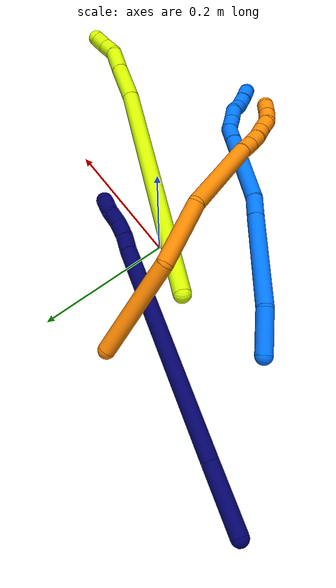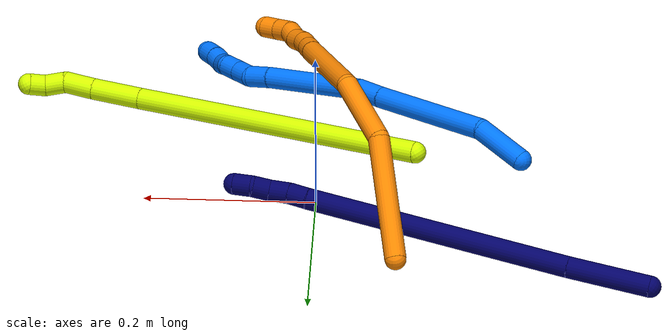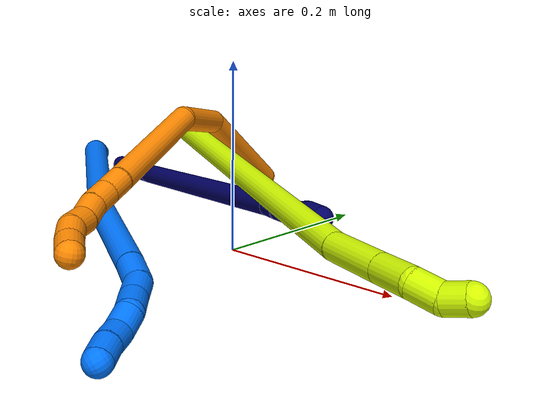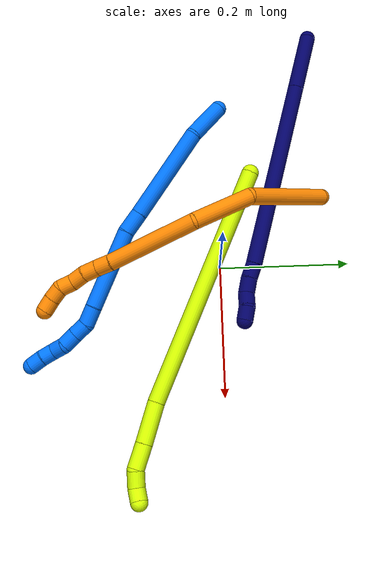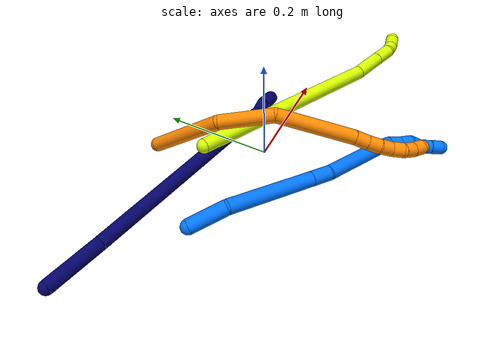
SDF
<sdf version="1.7">
 <world name="default">
  <model name="7">
   <static>0</static>
   <link name="7">
    <collision name="collision-cylinder-e_1_1_4">
     <pose>0.043488 -0.011115 -0.019052 2.61346 1.10139 2.31206</pose>
     <geometry><cylinder><radius>0.0125</radius><length>0.097524</length></cylinder></geometry>
     <surface>
      <friction><ode><mu>1.16</mu><mu2>1.16</mu2><slip1>0</slip1><slip2>0</slip2></ode></friction>
      <contact><ode><kp>1e+06</kp><kd>1</kd><max_vel>0</max_vel><min_depth>0.001</min_depth></ode></contact>
     </surface>
    </collision>
    <visual name="visual-cylinder-e_1_1_4">
     <pose>0.043488 -0.011115 -0.019052 2.61346 1.10139 2.31206</pose>
     <geometry><cylinder><radius>0.0125</radius><length>0.097524</length></cylinder></geometry>
     <material><ambient>0.003922 0 0.403922 1</ambient></material>
    </visual>
    <collision name="collision-cylinder-e_2_4_5">
     <pose>0.228566 -0.055564 -0.09603 2.61941 1.12979 2.34366</pose>
     <geometry><cylinder><radius>0.0125</radius><length>0.313139</length></cylinder></geometry>
     <surface>
      <friction><ode><mu>1.16</mu><mu2>1.16</mu2><slip1>0</slip1><slip2>0</slip2></ode></friction>
      <contact><ode><kp>1e+06</kp><kd>1</kd><max_vel>0</max_vel><min_depth>0.001</min_depth></ode></contact>
     </surface>
    </collision>
    <visual name="visual-cylinder-e_2_4_5">
     <pose>0.228566 -0.055564 -0.09603 2.61941 1.12979 2.34366</pose>
     <geometry><cylinder><radius>0.0125</radius><length>0.313139</length></cylinder></geometry>
     <material><ambient>0.003922 0 0.403922 1</ambient></material>
    </visual>
    <collision name="collision-cylinder-e_3_5_6">
     <pose>0.38043 -0.092451 -0.157817 2.39789 1.0986 2.00709</pose>
     <geometry><cylinder><radius>0.0125</radius><length>0.023074</length></cylinder></geometry>
     <surface>
      <friction><ode><mu>1.16</mu><mu2>1.16</mu2><slip1>0</slip1><slip2>0</slip2></ode></friction>
      <contact><ode><kp>1e+06</kp><kd>1</kd><max_vel>0</max_vel><min_depth>0.001</min_depth></ode></contact>
     </surface>
    </collision>
    <visual name="visual-cylinder-e_3_5_6">
     <pose>0.38043 -0.092451 -0.157817 2.39789 1.0986 2.00709</pose>
     <geometry><cylinder><radius>0.0125</radius><length>0.023074</length></cylinder></geometry>
     <material><ambient>0.003922 0 0.403922 1</ambient></material>
    </visual>
    <collision name="collision-cylinder-e_4_6_7">
     <pose>0.400958 -0.098664 -0.167248 2.69597 1.02896 2.37914</pose>
     <geometry><cylinder><radius>0.0125</radius><length>0.023936</length></cylinder></geometry>
     <surface>
      <friction><ode><mu>1.16</mu><mu2>1.16</mu2><slip1>0</slip1><slip2>0</slip2></ode></friction>
      <contact><ode><kp>1e+06</kp><kd>1</kd><max_vel>0</max_vel><min_depth>0.001</min_depth></ode></contact>
     </surface>
    </collision>
    <visual name="visual-cylinder-e_4_6_7">
     <pose>0.400958 -0.098664 -0.167248 2.69597 1.02896 2.37914</pose>
     <geometry><cylinder><radius>0.0125</radius><length>0.023936</length></cylinder></geometry>
     <material><ambient>0.003922 0 0.403922 1</ambient></material>
    </visual>
    <collision name="collision-cylinder-e_5_7_8">
     <pose>0.420807 -0.100182 -0.176939 -2.87134 1.15146 -2.72864</pose>
     <geometry><cylinder><radius>0.0125</radius><length>0.02101</length></cylinder></geometry>
     <surface>
      <friction><ode><mu>1.16</mu><mu2>1.16</mu2><slip1>0</slip1><slip2>0</slip2></ode></friction>
      <contact><ode><kp>1e+06</kp><kd>1</kd><max_vel>0</max_vel><min_depth>0.001</min_depth></ode></contact>
     </surface>
    </collision>
    <visual name="visual-cylinder-e_5_7_8">
     <pose>0.420807 -0.100182 -0.176939 -2.87134 1.15146 -2.72864</pose>
     <geometry><cylinder><radius>0.0125</radius><length>0.02101</length></cylinder></geometry>
     <material><ambient>0.003922 0 0.403922 1</ambient></material>
    </visual>
    <collision name="collision-cylinder-e_6_8_2">
     <pose>0.439419 -0.101461 -0.186201 2.70146 1.0086 2.37145</pose>
     <geometry><cylinder><radius>0.0125</radius><length>0.021316</length></cylinder></geometry>
     <surface>
      <friction><ode><mu>1.16</mu><mu2>1.16</mu2><slip1>0</slip1><slip2>0</slip2></ode></friction>
      <contact><ode><kp>1e+06</kp><kd>1</kd><max_vel>0</max_vel><min_depth>0.001</min_depth></ode></contact>
     </surface>
    </collision>
    <visual name="visual-cylinder-e_6_8_2">
     <pose>0.439419 -0.101461 -0.186201 2.70146 1.0086 2.37145</pose>
     <geometry><cylinder><radius>0.0125</radius><length>0.021316</length></cylinder></geometry>
     <material><ambient>0.003922 0 0.403922 1</ambient></material>
    </visual>
    <collision name="collision-sphere-2">
     <pose>0.448437 -0.103881 -0.191341 0 -0 0</pose>
     <geometry><sphere><radius>0.0125</radius></sphere></geometry>
     <surface>
      <friction><ode><mu>1.16</mu><mu2>1.16</mu2><slip1>0</slip1><slip2>0</slip2></ode></friction>
      <contact><ode><kp>1e+06</kp><kd>1</kd><max_vel>0</max_vel><min_depth>0.001</min_depth></ode></contact>
     </surface>
    </collision>
    <visual name="visual-sphere-2">
     <pose>0.448437 -0.103881 -0.191341 0 -0 0</pose>
     <geometry><sphere><radius>0.0125</radius></sphere></geometry>
     <material><ambient>0.003922 0 0.403922 1</ambient></material>
    </visual>
    <collision name="collision-sphere-4">
     <pose>0.086976 -0.022231 -0.038105 0 -0 0</pose>
     <geometry><sphere><radius>0.0125</radius></sphere></geometry>
     <surface>
      <friction><ode><mu>1.16</mu><mu2>1.16</mu2><slip1>0</slip1><slip2>0</slip2></ode></friction>
      <contact><ode><kp>1e+06</kp><kd>1</kd><max_vel>0</max_vel><min_depth>0.001</min_depth></ode></contact>
     </surface>
    </collision>
    <visual name="visual-sphere-4">
     <pose>0.086976 -0.022231 -0.038105 0 -0 0</pose>
     <geometry><sphere><radius>0.0125</radius></sphere></geometry>
     <material><ambient>0.003922 0 0.403922 1</ambient></material>
    </visual>
    <collision name="collision-sphere-1">
     <geometry><sphere><radius>0.0125</radius></sphere></geometry>
     <surface>
      <friction><ode><mu>1.16</mu><mu2>1.16</mu2><slip1>0</slip1><slip2>0</slip2></ode></friction>
      <contact><ode><kp>1e+06</kp><kd>1</kd><max_vel>0</max_vel><min_depth>0.001</min_depth></ode></contact>
     </surface>
    </collision>
    <visual name="visual-sphere-1">
     <geometry><sphere><radius>0.0125</radius></sphere></geometry>
     <material><ambient>0.003922 0 0.403922 1</ambient></material>
    </visual>
    <collision name="collision-sphere-8">
     <pose>0.430402 -0.09904 -0.181061 0 -0 0</pose>
     <geometry><sphere><radius>0.0125</radius></sphere></geometry>
     <surface>
      <friction><ode><mu>1.16</mu><mu2>1.16</mu2><slip1>0</slip1><slip2>0</slip2></ode></friction>
      <contact><ode><kp>1e+06</kp><kd>1</kd><max_vel>0</max_vel><min_depth>0.001</min_depth></ode></contact>
     </surface>
    </collision>
    <visual name="visual-sphere-8">
     <pose>0.430402 -0.09904 -0.181061 0 -0 0</pose>
     <geometry><sphere><radius>0.0125</radius></sphere></geometry>
     <material><ambient>0.003922 0 0.403922 1</ambient></material>
    </visual>
    <collision name="collision-sphere-5">
     <pose>0.370155 -0.088898 -0.153955 0 -0 0</pose>
     <geometry><sphere><radius>0.0125</radius></sphere></geometry>
     <surface>
      <friction><ode><mu>1.16</mu><mu2>1.16</mu2><slip1>0</slip1><slip2>0</slip2></ode></friction>
      <contact><ode><kp>1e+06</kp><kd>1</kd><max_vel>0</max_vel><min_depth>0.001</min_depth></ode></contact>
     </surface>
    </collision>
    <visual name="visual-sphere-5">
     <pose>0.370155 -0.088898 -0.153955 0 -0 0</pose>
     <geometry><sphere><radius>0.0125</radius></sphere></geometry>
     <material><ambient>0.003922 0 0.403922 1</ambient></material>
    </visual>
    <collision name="collision-sphere-6">
     <pose>0.390704 -0.096004 -0.161679 0 -0 0</pose>
     <geometry><sphere><radius>0.0125</radius></sphere></geometry>
     <surface>
      <friction><ode><mu>1.16</mu><mu2>1.16</mu2><slip1>0</slip1><slip2>0</slip2></ode></friction>
      <contact><ode><kp>1e+06</kp><kd>1</kd><max_vel>0</max_vel><min_depth>0.001</min_depth></ode></contact>
     </surface>
    </collision>
    <visual name="visual-sphere-6">
     <pose>0.390704 -0.096004 -0.161679 0 -0 0</pose>
     <geometry><sphere><radius>0.0125</radius></sphere></geometry>
     <material><ambient>0.003922 0 0.403922 1</ambient></material>
    </visual>
    <collision name="collision-sphere-7">
     <pose>0.411212 -0.101324 -0.172817 0 -0 0</pose>
     <geometry><sphere><radius>0.0125</radius></sphere></geometry>
     <surface>
      <friction><ode><mu>1.16</mu><mu2>1.16</mu2><slip1>0</slip1><slip2>0</slip2></ode></friction>
      <contact><ode><kp>1e+06</kp><kd>1</kd><max_vel>0</max_vel><min_depth>0.001</min_depth></ode></contact>
     </surface>
    </collision>
    <visual name="visual-sphere-7">
     <pose>0.411212 -0.101324 -0.172817 0 -0 0</pose>
     <geometry><sphere><radius>0.0125</radius></sphere></geometry>
     <material><ambient>0.003922 0 0.403922 1</ambient></material>
    </visual>
    <inertial>
     <pose>0.224795 -0.054492 -0.09452 0 -0 0</pose>
     <mass>0.5</mass>
     <inertia>
      <ixx>5.6e-05</ixx>
      <ixy>0</ixy>
      <ixz>0</ixz>
      <iyy>0.003273</iyy>
      <iyz>0</iyz>
      <izz>-0.001852</izz>
     </inertia>
    </inertial>
   </link>
   <pose>-0.387499 0.162384 0.011743 0.706288 -0.514035 -0.35595</pose>
  </model>
  <model name="14">
   <static>0</static>
   <link name="14">
    <collision name="collision-cylinder-e_1_1_4">
     <pose>0.031217 -0.003379 0.004408 0.654032 1.39472 0.553749</pose>
     <geometry><cylinder><radius>0.0125</radius><length>0.063415</length></cylinder></geometry>
     <surface>
      <friction><ode><mu>1.16</mu><mu2>1.16</mu2><slip1>0</slip1><slip2>0</slip2></ode></friction>
      <contact><ode><kp>1e+06</kp><kd>1</kd><max_vel>0</max_vel><min_depth>0.001</min_depth></ode></contact>
     </surface>
    </collision>
    <visual name="visual-cylinder-e_1_1_4">
     <pose>0.031217 -0.003379 0.004408 0.654032 1.39472 0.553749</pose>
     <geometry><cylinder><radius>0.0125</radius><length>0.063415</length></cylinder></geometry>
     <material><ambient>0 0.462745 1 1</ambient></material>
    </visual>
    <collision name="collision-cylinder-e_2_4_5">
     <pose>0.126637 -0.038437 0.0259 1.07622 1.05985 0.672731</pose>
     <geometry><cylinder><radius>0.0125</radius><length>0.147206</length></cylinder></geometry>
     <surface>
      <friction><ode><mu>1.16</mu><mu2>1.16</mu2><slip1>0</slip1><slip2>0</slip2></ode></friction>
      <contact><ode><kp>1e+06</kp><kd>1</kd><max_vel>0</max_vel><min_depth>0.001</min_depth></ode></contact>
     </surface>
    </collision>
    <visual name="visual-cylinder-e_2_4_5">
     <pose>0.126637 -0.038437 0.0259 1.07622 1.05985 0.672731</pose>
     <geometry><cylinder><radius>0.0125</radius><length>0.147206</length></cylinder></geometry>
     <material><ambient>0 0.462745 1 1</ambient></material>
    </visual>
    <collision name="collision-cylinder-e_3_5_6">
     <pose>0.205727 -0.076806 0.046912 1.03988 1.09036 0.668369</pose>
     <geometry><cylinder><radius>0.0125</radius><length>0.033575</length></cylinder></geometry>
     <surface>
      <friction><ode><mu>1.16</mu><mu2>1.16</mu2><slip1>0</slip1><slip2>0</slip2></ode></friction>
      <contact><ode><kp>1e+06</kp><kd>1</kd><max_vel>0</max_vel><min_depth>0.001</min_depth></ode></contact>
     </surface>
    </collision>
    <visual name="visual-cylinder-e_3_5_6">
     <pose>0.205727 -0.076806 0.046912 1.03988 1.09036 0.668369</pose>
     <geometry><cylinder><radius>0.0125</radius><length>0.033575</length></cylinder></geometry>
     <material><ambient>0 0.462745 1 1</ambient></material>
    </visual>
    <collision name="collision-cylinder-e_4_6_7">
     <pose>0.270927 -0.116838 0.056281 1.40905 0.979503 0.850915</pose>
     <geometry><cylinder><radius>0.0125</radius><length>0.121205</length></cylinder></geometry>
     <surface>
      <friction><ode><mu>1.16</mu><mu2>1.16</mu2><slip1>0</slip1><slip2>0</slip2></ode></friction>
      <contact><ode><kp>1e+06</kp><kd>1</kd><max_vel>0</max_vel><min_depth>0.001</min_depth></ode></contact>
     </surface>
    </collision>
    <visual name="visual-cylinder-e_4_6_7">
     <pose>0.270927 -0.116838 0.056281 1.40905 0.979503 0.850915</pose>
     <geometry><cylinder><radius>0.0125</radius><length>0.121205</length></cylinder></geometry>
     <material><ambient>0 0.462745 1 1</ambient></material>
    </visual>
    <collision name="collision-cylinder-e_5_7_8">
     <pose>0.332332 -0.158724 0.063645 1.34933 0.902343 0.739435</pose>
     <geometry><cylinder><radius>0.0125</radius><length>0.028265</length></cylinder></geometry>
     <surface>
      <friction><ode><mu>1.16</mu><mu2>1.16</mu2><slip1>0</slip1><slip2>0</slip2></ode></friction>
      <contact><ode><kp>1e+06</kp><kd>1</kd><max_vel>0</max_vel><min_depth>0.001</min_depth></ode></contact>
     </surface>
    </collision>
    <visual name="visual-cylinder-e_5_7_8">
     <pose>0.332332 -0.158724 0.063645 1.34933 0.902343 0.739435</pose>
     <geometry><cylinder><radius>0.0125</radius><length>0.028265</length></cylinder></geometry>
     <material><ambient>0 0.462745 1 1</ambient></material>
    </visual>
    <collision name="collision-cylinder-e_6_8_9">
     <pose>0.352501 -0.17149 0.071016 0.659339 0.921516 0.336476</pose>
     <geometry><cylinder><radius>0.0125</radius><length>0.022795</length></cylinder></geometry>
     <surface>
      <friction><ode><mu>1.16</mu><mu2>1.16</mu2><slip1>0</slip1><slip2>0</slip2></ode></friction>
      <contact><ode><kp>1e+06</kp><kd>1</kd><max_vel>0</max_vel><min_depth>0.001</min_depth></ode></contact>
     </surface>
    </collision>
    <visual name="visual-cylinder-e_6_8_9">
     <pose>0.352501 -0.17149 0.071016 0.659339 0.921516 0.336476</pose>
     <geometry><cylinder><radius>0.0125</radius><length>0.022795</length></cylinder></geometry>
     <material><ambient>0 0.462745 1 1</ambient></material>
    </visual>
    <collision name="collision-cylinder-e_7_9_10">
     <pose>0.371136 -0.179666 0.081154 0.700433 1.00004 0.393944</pose>
     <geometry><cylinder><radius>0.0125</radius><length>0.022712</length></cylinder></geometry>
     <surface>
      <friction><ode><mu>1.16</mu><mu2>1.16</mu2><slip1>0</slip1><slip2>0</slip2></ode></friction>
      <contact><ode><kp>1e+06</kp><kd>1</kd><max_vel>0</max_vel><min_depth>0.001</min_depth></ode></contact>
     </surface>
    </collision>
    <visual name="visual-cylinder-e_7_9_10">
     <pose>0.371136 -0.179666 0.081154 0.700433 1.00004 0.393944</pose>
     <geometry><cylinder><radius>0.0125</radius><length>0.022712</length></cylinder></geometry>
     <material><ambient>0 0.462745 1 1</ambient></material>
    </visual>
    <collision name="collision-cylinder-e_8_10_11">
     <pose>0.385892 -0.187759 0.093564 0.492126 0.535776 0.137658</pose>
     <geometry><cylinder><radius>0.0125</radius><length>0.020372</length></cylinder></geometry>
     <surface>
      <friction><ode><mu>1.16</mu><mu2>1.16</mu2><slip1>0</slip1><slip2>0</slip2></ode></friction>
      <contact><ode><kp>1e+06</kp><kd>1</kd><max_vel>0</max_vel><min_depth>0.001</min_depth></ode></contact>
     </surface>
    </collision>
    <visual name="visual-cylinder-e_8_10_11">
     <pose>0.385892 -0.187759 0.093564 0.492126 0.535776 0.137658</pose>
     <geometry><cylinder><radius>0.0125</radius><length>0.020372</length></cylinder></geometry>
     <material><ambient>0 0.462745 1 1</ambient></material>
    </visual>
    <collision name="collision-cylinder-e_9_11_12">
     <pose>0.399037 -0.193606 0.107182 0.281922 0.912767 0.13911</pose>
     <geometry><cylinder><radius>0.0125</radius><length>0.020084</length></cylinder></geometry>
     <surface>
      <friction><ode><mu>1.16</mu><mu2>1.16</mu2><slip1>0</slip1><slip2>0</slip2></ode></friction>
      <contact><ode><kp>1e+06</kp><kd>1</kd><max_vel>0</max_vel><min_depth>0.001</min_depth></ode></contact>
     </surface>
    </collision>
    <visual name="visual-cylinder-e_9_11_12">
     <pose>0.399037 -0.193606 0.107182 0.281922 0.912767 0.13911</pose>
     <geometry><cylinder><radius>0.0125</radius><length>0.020084</length></cylinder></geometry>
     <material><ambient>0 0.462745 1 1</ambient></material>
    </visual>
    <collision name="collision-cylinder-e_10_12_2">
     <pose>0.414782 -0.198419 0.118849 0.493715 0.872225 0.23381</pose>
     <geometry><cylinder><radius>0.0125</radius><length>0.02037</length></cylinder></geometry>
     <surface>
      <friction><ode><mu>1.16</mu><mu2>1.16</mu2><slip1>0</slip1><slip2>0</slip2></ode></friction>
      <contact><ode><kp>1e+06</kp><kd>1</kd><max_vel>0</max_vel><min_depth>0.001</min_depth></ode></contact>
     </surface>
    </collision>
    <visual name="visual-cylinder-e_10_12_2">
     <pose>0.414782 -0.198419 0.118849 0.493715 0.872225 0.23381</pose>
     <geometry><cylinder><radius>0.0125</radius><length>0.02037</length></cylinder></geometry>
     <material><ambient>0 0.462745 1 1</ambient></material>
    </visual>
    <collision name="collision-sphere-2">
     <pose>0.422581 -0.201523 0.124617 0 -0 0</pose>
     <geometry><sphere><radius>0.0125</radius></sphere></geometry>
     <surface>
      <friction><ode><mu>1.16</mu><mu2>1.16</mu2><slip1>0</slip1><slip2>0</slip2></ode></friction>
      <contact><ode><kp>1e+06</kp><kd>1</kd><max_vel>0</max_vel><min_depth>0.001</min_depth></ode></contact>
     </surface>
    </collision>
    <visual name="visual-sphere-2">
     <pose>0.422581 -0.201523 0.124617 0 -0 0</pose>
     <geometry><sphere><radius>0.0125</radius></sphere></geometry>
     <material><ambient>0 0.462745 1 1</ambient></material>
    </visual>
    <collision name="collision-sphere-12">
     <pose>0.406982 -0.195315 0.113081 0 -0 0</pose>
     <geometry><sphere><radius>0.0125</radius></sphere></geometry>
     <surface>
      <friction><ode><mu>1.16</mu><mu2>1.16</mu2><slip1>0</slip1><slip2>0</slip2></ode></friction>
      <contact><ode><kp>1e+06</kp><kd>1</kd><max_vel>0</max_vel><min_depth>0.001</min_depth></ode></contact>
     </surface>
    </collision>
    <visual name="visual-sphere-12">
     <pose>0.406982 -0.195315 0.113081 0 -0 0</pose>
     <geometry><sphere><radius>0.0125</radius></sphere></geometry>
     <material><ambient>0 0.462745 1 1</ambient></material>
    </visual>
    <collision name="collision-sphere-11">
     <pose>0.391092 -0.191898 0.101283 0 -0 0</pose>
     <geometry><sphere><radius>0.0125</radius></sphere></geometry>
     <surface>
      <friction><ode><mu>1.16</mu><mu2>1.16</mu2><slip1>0</slip1><slip2>0</slip2></ode></friction>
      <contact><ode><kp>1e+06</kp><kd>1</kd><max_vel>0</max_vel><min_depth>0.001</min_depth></ode></contact>
     </surface>
    </collision>
    <visual name="visual-sphere-11">
     <pose>0.391092 -0.191898 0.101283 0 -0 0</pose>
     <geometry><sphere><radius>0.0125</radius></sphere></geometry>
     <material><ambient>0 0.462745 1 1</ambient></material>
    </visual>
    <collision name="collision-sphere-10">
     <pose>0.380692 -0.183621 0.085844 0 -0 0</pose>
     <geometry><sphere><radius>0.0125</radius></sphere></geometry>
     <surface>
      <friction><ode><mu>1.16</mu><mu2>1.16</mu2><slip1>0</slip1><slip2>0</slip2></ode></friction>
      <contact><ode><kp>1e+06</kp><kd>1</kd><max_vel>0</max_vel><min_depth>0.001</min_depth></ode></contact>
     </surface>
    </collision>
    <visual name="visual-sphere-10">
     <pose>0.380692 -0.183621 0.085844 0 -0 0</pose>
     <geometry><sphere><radius>0.0125</radius></sphere></geometry>
     <material><ambient>0 0.462745 1 1</ambient></material>
    </visual>
    <collision name="collision-sphere-9">
     <pose>0.36158 -0.175712 0.076463 0 -0 0</pose>
     <geometry><sphere><radius>0.0125</radius></sphere></geometry>
     <surface>
      <friction><ode><mu>1.16</mu><mu2>1.16</mu2><slip1>0</slip1><slip2>0</slip2></ode></friction>
      <contact><ode><kp>1e+06</kp><kd>1</kd><max_vel>0</max_vel><min_depth>0.001</min_depth></ode></contact>
     </surface>
    </collision>
    <visual name="visual-sphere-9">
     <pose>0.36158 -0.175712 0.076463 0 -0 0</pose>
     <geometry><sphere><radius>0.0125</radius></sphere></geometry>
     <material><ambient>0 0.462745 1 1</ambient></material>
    </visual>
    <collision name="collision-sphere-4">
     <pose>0.062434 -0.006758 0.008816 0 -0 0</pose>
     <geometry><sphere><radius>0.0125</radius></sphere></geometry>
     <surface>
      <friction><ode><mu>1.16</mu><mu2>1.16</mu2><slip1>0</slip1><slip2>0</slip2></ode></friction>
      <contact><ode><kp>1e+06</kp><kd>1</kd><max_vel>0</max_vel><min_depth>0.001</min_depth></ode></contact>
     </surface>
    </collision>
    <visual name="visual-sphere-4">
     <pose>0.062434 -0.006758 0.008816 0 -0 0</pose>
     <geometry><sphere><radius>0.0125</radius></sphere></geometry>
     <material><ambient>0 0.462745 1 1</ambient></material>
    </visual>
    <collision name="collision-sphere-1">
     <geometry><sphere><radius>0.0125</radius></sphere></geometry>
     <surface>
      <friction><ode><mu>1.16</mu><mu2>1.16</mu2><slip1>0</slip1><slip2>0</slip2></ode></friction>
      <contact><ode><kp>1e+06</kp><kd>1</kd><max_vel>0</max_vel><min_depth>0.001</min_depth></ode></contact>
     </surface>
    </collision>
    <visual name="visual-sphere-1">
     <geometry><sphere><radius>0.0125</radius></sphere></geometry>
     <material><ambient>0 0.462745 1 1</ambient></material>
    </visual>
    <collision name="collision-sphere-8">
     <pose>0.343423 -0.167269 0.065569 0 -0 0</pose>
     <geometry><sphere><radius>0.0125</radius></sphere></geometry>
     <surface>
      <friction><ode><mu>1.16</mu><mu2>1.16</mu2><slip1>0</slip1><slip2>0</slip2></ode></friction>
      <contact><ode><kp>1e+06</kp><kd>1</kd><max_vel>0</max_vel><min_depth>0.001</min_depth></ode></contact>
     </surface>
    </collision>
    <visual name="visual-sphere-8">
     <pose>0.343423 -0.167269 0.065569 0 -0 0</pose>
     <geometry><sphere><radius>0.0125</radius></sphere></geometry>
     <material><ambient>0 0.462745 1 1</ambient></material>
    </visual>
    <collision name="collision-sphere-5">
     <pose>0.19084 -0.070116 0.042984 0 -0 0</pose>
     <geometry><sphere><radius>0.0125</radius></sphere></geometry>
     <surface>
      <friction><ode><mu>1.16</mu><mu2>1.16</mu2><slip1>0</slip1><slip2>0</slip2></ode></friction>
      <contact><ode><kp>1e+06</kp><kd>1</kd><max_vel>0</max_vel><min_depth>0.001</min_depth></ode></contact>
     </surface>
    </collision>
    <visual name="visual-sphere-5">
     <pose>0.19084 -0.070116 0.042984 0 -0 0</pose>
     <geometry><sphere><radius>0.0125</radius></sphere></geometry>
     <material><ambient>0 0.462745 1 1</ambient></material>
    </visual>
    <collision name="collision-sphere-6">
     <pose>0.220614 -0.083497 0.05084 0 -0 0</pose>
     <geometry><sphere><radius>0.0125</radius></sphere></geometry>
     <surface>
      <friction><ode><mu>1.16</mu><mu2>1.16</mu2><slip1>0</slip1><slip2>0</slip2></ode></friction>
      <contact><ode><kp>1e+06</kp><kd>1</kd><max_vel>0</max_vel><min_depth>0.001</min_depth></ode></contact>
     </surface>
    </collision>
    <visual name="visual-sphere-6">
     <pose>0.220614 -0.083497 0.05084 0 -0 0</pose>
     <geometry><sphere><radius>0.0125</radius></sphere></geometry>
     <material><ambient>0 0.462745 1 1</ambient></material>
    </visual>
    <collision name="collision-sphere-7">
     <pose>0.321241 -0.150179 0.061721 0 -0 0</pose>
     <geometry><sphere><radius>0.0125</radius></sphere></geometry>
     <surface>
      <friction><ode><mu>1.16</mu><mu2>1.16</mu2><slip1>0</slip1><slip2>0</slip2></ode></friction>
      <contact><ode><kp>1e+06</kp><kd>1</kd><max_vel>0</max_vel><min_depth>0.001</min_depth></ode></contact>
     </surface>
    </collision>
    <visual name="visual-sphere-7">
     <pose>0.321241 -0.150179 0.061721 0 -0 0</pose>
     <geometry><sphere><radius>0.0125</radius></sphere></geometry>
     <material><ambient>0 0.462745 1 1</ambient></material>
    </visual>
    <inertial>
     <pose>0.221099 -0.093688 0.048459 0 -0 0</pose>
     <mass>0.5</mass>
     <inertia>
      <ixx>0.000358</ixx>
      <ixy>0</ixy>
      <ixz>0</ixz>
      <iyy>0.000516</iyy>
      <iyz>0</iyz>
      <izz>-0.00018</izz>
     </inertia>
    </inertial>
   </link>
   <pose>-0.237077 0.005526 0.072104 2.04963 -0.386874 -0.621012</pose>
  </model>
  <model name="15">
   <static>0</static>
   <link name="15">
    <collision name="collision-cylinder-e_1_1_4">
     <pose>0.134113 -0.076285 0.091874 0.692961 0.8433 0.321108</pose>
     <geometry><cylinder><radius>0.0125</radius><length>0.359146</length></cylinder></geometry>
     <surface>
      <friction><ode><mu>1.16</mu><mu2>1.16</mu2><slip1>0</slip1><slip2>0</slip2></ode></friction>
      <contact><ode><kp>1e+06</kp><kd>1</kd><max_vel>0</max_vel><min_depth>0.001</min_depth></ode></contact>
     </surface>
    </collision>
    <visual name="visual-cylinder-e_1_1_4">
     <pose>0.134113 -0.076285 0.091874 0.692961 0.8433 0.321108</pose>
     <geometry><cylinder><radius>0.0125</radius><length>0.359146</length></cylinder></geometry>
     <material><ambient>0.835294 1 0 1</ambient></material>
    </visual>
    <collision name="collision-cylinder-e_2_4_5">
     <pose>0.291002 -0.161344 0.200739 0.476627 0.872401 0.225522</pose>
     <geometry><cylinder><radius>0.0125</radius><length>0.059479</length></cylinder></geometry>
     <surface>
      <friction><ode><mu>1.16</mu><mu2>1.16</mu2><slip1>0</slip1><slip2>0</slip2></ode></friction>
      <contact><ode><kp>1e+06</kp><kd>1</kd><max_vel>0</max_vel><min_depth>0.001</min_depth></ode></contact>
     </surface>
    </collision>
    <visual name="visual-cylinder-e_2_4_5">
     <pose>0.291002 -0.161344 0.200739 0.476627 0.872401 0.225522</pose>
     <geometry><cylinder><radius>0.0125</radius><length>0.059479</length></cylinder></geometry>
     <material><ambient>0.835294 1 0 1</ambient></material>
    </visual>
    <collision name="collision-cylinder-e_3_5_6">
     <pose>0.327206 -0.175675 0.22845 0.47832 0.838348 0.216441</pose>
     <geometry><cylinder><radius>0.0125</radius><length>0.036118</length></cylinder></geometry>
     <surface>
      <friction><ode><mu>1.16</mu><mu2>1.16</mu2><slip1>0</slip1><slip2>0</slip2></ode></friction>
      <contact><ode><kp>1e+06</kp><kd>1</kd><max_vel>0</max_vel><min_depth>0.001</min_depth></ode></contact>
     </surface>
    </collision>
    <visual name="visual-cylinder-e_3_5_6">
     <pose>0.327206 -0.175675 0.22845 0.47832 0.838348 0.216441</pose>
     <geometry><cylinder><radius>0.0125</radius><length>0.036118</length></cylinder></geometry>
     <material><ambient>0.835294 1 0 1</ambient></material>
    </visual>
    <collision name="collision-cylinder-e_4_6_7">
     <pose>0.352586 -0.182316 0.243044 0.272543 1.24624 0.196445</pose>
     <geometry><cylinder><radius>0.0125</radius><length>0.025221</length></cylinder></geometry>
     <surface>
      <friction><ode><mu>1.16</mu><mu2>1.16</mu2><slip1>0</slip1><slip2>0</slip2></ode></friction>
      <contact><ode><kp>1e+06</kp><kd>1</kd><max_vel>0</max_vel><min_depth>0.001</min_depth></ode></contact>
     </surface>
    </collision>
    <visual name="visual-cylinder-e_4_6_7">
     <pose>0.352586 -0.182316 0.243044 0.272543 1.24624 0.196445</pose>
     <geometry><cylinder><radius>0.0125</radius><length>0.025221</length></cylinder></geometry>
     <material><ambient>0.835294 1 0 1</ambient></material>
    </visual>
    <collision name="collision-cylinder-e_5_7_2">
     <pose>0.372386 -0.18093 0.252633 -0.407689 0.900067 -0.199067</pose>
     <geometry><cylinder><radius>0.0125</radius><length>0.020036</length></cylinder></geometry>
     <surface>
      <friction><ode><mu>1.16</mu><mu2>1.16</mu2><slip1>0</slip1><slip2>0</slip2></ode></friction>
      <contact><ode><kp>1e+06</kp><kd>1</kd><max_vel>0</max_vel><min_depth>0.001</min_depth></ode></contact>
     </surface>
    </collision>
    <visual name="visual-cylinder-e_5_7_2">
     <pose>0.372386 -0.18093 0.252633 -0.407689 0.900067 -0.199067</pose>
     <geometry><cylinder><radius>0.0125</radius><length>0.020036</length></cylinder></geometry>
     <material><ambient>0.835294 1 0 1</ambient></material>
    </visual>
    <collision name="collision-sphere-2">
     <pose>0.380234 -0.178461 0.25835 0 -0 0</pose>
     <geometry><sphere><radius>0.0125</radius></sphere></geometry>
     <surface>
      <friction><ode><mu>1.16</mu><mu2>1.16</mu2><slip1>0</slip1><slip2>0</slip2></ode></friction>
      <contact><ode><kp>1e+06</kp><kd>1</kd><max_vel>0</max_vel><min_depth>0.001</min_depth></ode></contact>
     </surface>
    </collision>
    <visual name="visual-sphere-2">
     <pose>0.380234 -0.178461 0.25835 0 -0 0</pose>
     <geometry><sphere><radius>0.0125</radius></sphere></geometry>
     <material><ambient>0.835294 1 0 1</ambient></material>
    </visual>
    <collision name="collision-sphere-7">
     <pose>0.364538 -0.183398 0.246917 0 -0 0</pose>
     <geometry><sphere><radius>0.0125</radius></sphere></geometry>
     <surface>
      <friction><ode><mu>1.16</mu><mu2>1.16</mu2><slip1>0</slip1><slip2>0</slip2></ode></friction>
      <contact><ode><kp>1e+06</kp><kd>1</kd><max_vel>0</max_vel><min_depth>0.001</min_depth></ode></contact>
     </surface>
    </collision>
    <visual name="visual-sphere-7">
     <pose>0.364538 -0.183398 0.246917 0 -0 0</pose>
     <geometry><sphere><radius>0.0125</radius></sphere></geometry>
     <material><ambient>0.835294 1 0 1</ambient></material>
    </visual>
    <collision name="collision-sphere-6">
     <pose>0.340634 -0.181234 0.239171 0 -0 0</pose>
     <geometry><sphere><radius>0.0125</radius></sphere></geometry>
     <surface>
      <friction><ode><mu>1.16</mu><mu2>1.16</mu2><slip1>0</slip1><slip2>0</slip2></ode></friction>
      <contact><ode><kp>1e+06</kp><kd>1</kd><max_vel>0</max_vel><min_depth>0.001</min_depth></ode></contact>
     </surface>
    </collision>
    <visual name="visual-sphere-6">
     <pose>0.340634 -0.181234 0.239171 0 -0 0</pose>
     <geometry><sphere><radius>0.0125</radius></sphere></geometry>
     <material><ambient>0.835294 1 0 1</ambient></material>
    </visual>
    <collision name="collision-sphere-5">
     <pose>0.313779 -0.170117 0.21773 0 -0 0</pose>
     <geometry><sphere><radius>0.0125</radius></sphere></geometry>
     <surface>
      <friction><ode><mu>1.16</mu><mu2>1.16</mu2><slip1>0</slip1><slip2>0</slip2></ode></friction>
      <contact><ode><kp>1e+06</kp><kd>1</kd><max_vel>0</max_vel><min_depth>0.001</min_depth></ode></contact>
     </surface>
    </collision>
    <visual name="visual-sphere-5">
     <pose>0.313779 -0.170117 0.21773 0 -0 0</pose>
     <geometry><sphere><radius>0.0125</radius></sphere></geometry>
     <material><ambient>0.835294 1 0 1</ambient></material>
    </visual>
    <collision name="collision-sphere-1">
     <geometry><sphere><radius>0.0125</radius></sphere></geometry>
     <surface>
      <friction><ode><mu>1.16</mu><mu2>1.16</mu2><slip1>0</slip1><slip2>0</slip2></ode></friction>
      <contact><ode><kp>1e+06</kp><kd>1</kd><max_vel>0</max_vel><min_depth>0.001</min_depth></ode></contact>
     </surface>
    </collision>
    <visual name="visual-sphere-1">
     <geometry><sphere><radius>0.0125</radius></sphere></geometry>
     <material><ambient>0.835294 1 0 1</ambient></material>
    </visual>
    <collision name="collision-sphere-4">
     <pose>0.268225 -0.152571 0.183748 0 -0 0</pose>
     <geometry><sphere><radius>0.0125</radius></sphere></geometry>
     <surface>
      <friction><ode><mu>1.16</mu><mu2>1.16</mu2><slip1>0</slip1><slip2>0</slip2></ode></friction>
      <contact><ode><kp>1e+06</kp><kd>1</kd><max_vel>0</max_vel><min_depth>0.001</min_depth></ode></contact>
     </surface>
    </collision>
    <visual name="visual-sphere-4">
     <pose>0.268225 -0.152571 0.183748 0 -0 0</pose>
     <geometry><sphere><radius>0.0125</radius></sphere></geometry>
     <material><ambient>0.835294 1 0 1</ambient></material>
    </visual>
    <inertial>
     <pose>0.187292 -0.103125 0.128757 0 -0 0</pose>
     <mass>0.5</mass>
     <inertia>
      <ixx>0.003309</ixx>
      <ixy>0</ixy>
      <ixz>0</ixz>
      <iyy>0.004242</iyy>
      <iyz>0</iyz>
      <izz>-0.001243</izz>
     </inertia>
    </inertial>
   </link>
   <pose>-0.116324 0.047326 0.108465 0.48157 0.461692 0.239458</pose>
  </model>
  <model name="19">
   <static>0</static>
   <link name="19">
    <collision name="collision-cylinder-e_1_1_4">
     <pose>-0.002832 -0.064662 0.033534 1.09238 -0.038866 -0.023628</pose>
     <geometry><cylinder><radius>0.0125</radius><length>0.145791</length></cylinder></geometry>
     <surface>
      <friction><ode><mu>1.16</mu><mu2>1.16</mu2><slip1>0</slip1><slip2>0</slip2></ode></friction>
      <contact><ode><kp>1e+06</kp><kd>1</kd><max_vel>0</max_vel><min_depth>0.001</min_depth></ode></contact>
     </surface>
    </collision>
    <visual name="visual-cylinder-e_1_1_4">
     <pose>-0.002832 -0.064662 0.033534 1.09238 -0.038866 -0.023628</pose>
     <geometry><cylinder><radius>0.0125</radius><length>0.145791</length></cylinder></geometry>
     <material><ambient>0.996078 0.537255 0 1</ambient></material>
    </visual>
    <collision name="collision-cylinder-e_2_4_5">
     <pose>0.006958 -0.173886 0.070935 1.48421 0.27506 0.252472</pose>
     <geometry><cylinder><radius>0.0125</radius><length>0.092952</length></cylinder></geometry>
     <surface>
      <friction><ode><mu>1.16</mu><mu2>1.16</mu2><slip1>0</slip1><slip2>0</slip2></ode></friction>
      <contact><ode><kp>1e+06</kp><kd>1</kd><max_vel>0</max_vel><min_depth>0.001</min_depth></ode></contact>
     </surface>
    </collision>
    <visual name="visual-cylinder-e_2_4_5">
     <pose>0.006958 -0.173886 0.070935 1.48421 0.27506 0.252472</pose>
     <geometry><cylinder><radius>0.0125</radius><length>0.092952</length></cylinder></geometry>
     <material><ambient>0.996078 0.537255 0 1</ambient></material>
    </visual>
    <collision name="collision-cylinder-e_3_5_6">
     <pose>0.036768 -0.278402 0.049269 1.97342 0.257871 0.387367</pose>
     <geometry><cylinder><radius>0.0125</radius><length>0.134787</length></cylinder></geometry>
     <surface>
      <friction><ode><mu>1.16</mu><mu2>1.16</mu2><slip1>0</slip1><slip2>0</slip2></ode></friction>
      <contact><ode><kp>1e+06</kp><kd>1</kd><max_vel>0</max_vel><min_depth>0.001</min_depth></ode></contact>
     </surface>
    </collision>
    <visual name="visual-cylinder-e_3_5_6">
     <pose>0.036768 -0.278402 0.049269 1.97342 0.257871 0.387367</pose>
     <geometry><cylinder><radius>0.0125</radius><length>0.134787</length></cylinder></geometry>
     <material><ambient>0.996078 0.537255 0 1</ambient></material>
    </visual>
    <collision name="collision-cylinder-e_4_6_7">
     <pose>0.055913 -0.348235 0.018634 2.04749 0.174285 0.28494</pose>
     <geometry><cylinder><radius>0.0125</radius><length>0.022577</length></cylinder></geometry>
     <surface>
      <friction><ode><mu>1.16</mu><mu2>1.16</mu2><slip1>0</slip1><slip2>0</slip2></ode></friction>
      <contact><ode><kp>1e+06</kp><kd>1</kd><max_vel>0</max_vel><min_depth>0.001</min_depth></ode></contact>
     </surface>
    </collision>
    <visual name="visual-cylinder-e_4_6_7">
     <pose>0.055913 -0.348235 0.018634 2.04749 0.174285 0.28494</pose>
     <geometry><cylinder><radius>0.0125</radius><length>0.022577</length></cylinder></geometry>
     <material><ambient>0.996078 0.537255 0 1</ambient></material>
    </visual>
    <collision name="collision-cylinder-e_5_7_8">
     <pose>0.060288 -0.367957 0.009206 1.9849 0.221195 0.336997</pose>
     <geometry><cylinder><radius>0.0125</radius><length>0.022043</length></cylinder></geometry>
     <surface>
      <friction><ode><mu>1.16</mu><mu2>1.16</mu2><slip1>0</slip1><slip2>0</slip2></ode></friction>
      <contact><ode><kp>1e+06</kp><kd>1</kd><max_vel>0</max_vel><min_depth>0.001</min_depth></ode></contact>
     </surface>
    </collision>
    <visual name="visual-cylinder-e_5_7_8">
     <pose>0.060288 -0.367957 0.009206 1.9849 0.221195 0.336997</pose>
     <geometry><cylinder><radius>0.0125</radius><length>0.022043</length></cylinder></geometry>
     <material><ambient>0.996078 0.537255 0 1</ambient></material>
    </visual>
    <collision name="collision-cylinder-e_6_8_9">
     <pose>0.067069 -0.386518 0.000283 2.05602 0.416804 0.674364</pose>
     <geometry><cylinder><radius>0.0125</radius><length>0.021554</length></cylinder></geometry>
     <surface>
      <friction><ode><mu>1.16</mu><mu2>1.16</mu2><slip1>0</slip1><slip2>0</slip2></ode></friction>
      <contact><ode><kp>1e+06</kp><kd>1</kd><max_vel>0</max_vel><min_depth>0.001</min_depth></ode></contact>
     </surface>
    </collision>
    <visual name="visual-cylinder-e_6_8_9">
     <pose>0.067069 -0.386518 0.000283 2.05602 0.416804 0.674364</pose>
     <geometry><cylinder><radius>0.0125</radius><length>0.021554</length></cylinder></geometry>
     <material><ambient>0.996078 0.537255 0 1</ambient></material>
    </visual>
    <collision name="collision-cylinder-e_7_9_10">
     <pose>0.074095 -0.404735 -0.006305 1.77746 0.267779 0.328736</pose>
     <geometry><cylinder><radius>0.0125</radius><length>0.02013</length></cylinder></geometry>
     <surface>
      <friction><ode><mu>1.16</mu><mu2>1.16</mu2><slip1>0</slip1><slip2>0</slip2></ode></friction>
      <contact><ode><kp>1e+06</kp><kd>1</kd><max_vel>0</max_vel><min_depth>0.001</min_depth></ode></contact>
     </surface>
    </collision>
    <visual name="visual-cylinder-e_7_9_10">
     <pose>0.074095 -0.404735 -0.006305 1.77746 0.267779 0.328736</pose>
     <geometry><cylinder><radius>0.0125</radius><length>0.02013</length></cylinder></geometry>
     <material><ambient>0.996078 0.537255 0 1</ambient></material>
    </visual>
    <collision name="collision-cylinder-e_8_10_11">
     <pose>0.083306 -0.42112 -0.011434 1.99833 0.713337 1.05002</pose>
     <geometry><cylinder><radius>0.0125</radius><length>0.020014</length></cylinder></geometry>
     <surface>
      <friction><ode><mu>1.16</mu><mu2>1.16</mu2><slip1>0</slip1><slip2>0</slip2></ode></friction>
      <contact><ode><kp>1e+06</kp><kd>1</kd><max_vel>0</max_vel><min_depth>0.001</min_depth></ode></contact>
     </surface>
    </collision>
    <visual name="visual-cylinder-e_8_10_11">
     <pose>0.083306 -0.42112 -0.011434 1.99833 0.713337 1.05002</pose>
     <geometry><cylinder><radius>0.0125</radius><length>0.020014</length></cylinder></geometry>
     <material><ambient>0.996078 0.537255 0 1</ambient></material>
    </visual>
    <collision name="collision-cylinder-e_9_11_2">
     <pose>0.09733 -0.434471 -0.016533 1.8654 0.835923 1.0792</pose>
     <geometry><cylinder><radius>0.0125</radius><length>0.020152</length></cylinder></geometry>
     <surface>
      <friction><ode><mu>1.16</mu><mu2>1.16</mu2><slip1>0</slip1><slip2>0</slip2></ode></friction>
      <contact><ode><kp>1e+06</kp><kd>1</kd><max_vel>0</max_vel><min_depth>0.001</min_depth></ode></contact>
     </surface>
    </collision>
    <visual name="visual-cylinder-e_9_11_2">
     <pose>0.09733 -0.434471 -0.016533 1.8654 0.835923 1.0792</pose>
     <geometry><cylinder><radius>0.0125</radius><length>0.020152</length></cylinder></geometry>
     <material><ambient>0.996078 0.537255 0 1</ambient></material>
    </visual>
    <collision name="collision-sphere-2">
     <pose>0.104805 -0.440935 -0.018495 0 -0 0</pose>
     <geometry><sphere><radius>0.0125</radius></sphere></geometry>
     <surface>
      <friction><ode><mu>1.16</mu><mu2>1.16</mu2><slip1>0</slip1><slip2>0</slip2></ode></friction>
      <contact><ode><kp>1e+06</kp><kd>1</kd><max_vel>0</max_vel><min_depth>0.001</min_depth></ode></contact>
     </surface>
    </collision>
    <visual name="visual-sphere-2">
     <pose>0.104805 -0.440935 -0.018495 0 -0 0</pose>
     <geometry><sphere><radius>0.0125</radius></sphere></geometry>
     <material><ambient>0.996078 0.537255 0 1</ambient></material>
    </visual>
    <collision name="collision-sphere-11">
     <pose>0.089854 -0.428006 -0.014571 0 -0 0</pose>
     <geometry><sphere><radius>0.0125</radius></sphere></geometry>
     <surface>
      <friction><ode><mu>1.16</mu><mu2>1.16</mu2><slip1>0</slip1><slip2>0</slip2></ode></friction>
      <contact><ode><kp>1e+06</kp><kd>1</kd><max_vel>0</max_vel><min_depth>0.001</min_depth></ode></contact>
     </surface>
    </collision>
    <visual name="visual-sphere-11">
     <pose>0.089854 -0.428006 -0.014571 0 -0 0</pose>
     <geometry><sphere><radius>0.0125</radius></sphere></geometry>
     <material><ambient>0.996078 0.537255 0 1</ambient></material>
    </visual>
    <collision name="collision-sphere-10">
     <pose>0.076758 -0.414234 -0.008296 0 -0 0</pose>
     <geometry><sphere><radius>0.0125</radius></sphere></geometry>
     <surface>
      <friction><ode><mu>1.16</mu><mu2>1.16</mu2><slip1>0</slip1><slip2>0</slip2></ode></friction>
      <contact><ode><kp>1e+06</kp><kd>1</kd><max_vel>0</max_vel><min_depth>0.001</min_depth></ode></contact>
     </surface>
    </collision>
    <visual name="visual-sphere-10">
     <pose>0.076758 -0.414234 -0.008296 0 -0 0</pose>
     <geometry><sphere><radius>0.0125</radius></sphere></geometry>
     <material><ambient>0.996078 0.537255 0 1</ambient></material>
    </visual>
    <collision name="collision-sphere-9">
     <pose>0.071432 -0.395235 -0.004313 0 -0 0</pose>
     <geometry><sphere><radius>0.0125</radius></sphere></geometry>
     <surface>
      <friction><ode><mu>1.16</mu><mu2>1.16</mu2><slip1>0</slip1><slip2>0</slip2></ode></friction>
      <contact><ode><kp>1e+06</kp><kd>1</kd><max_vel>0</max_vel><min_depth>0.001</min_depth></ode></contact>
     </surface>
    </collision>
    <visual name="visual-sphere-9">
     <pose>0.071432 -0.395235 -0.004313 0 -0 0</pose>
     <geometry><sphere><radius>0.0125</radius></sphere></geometry>
     <material><ambient>0.996078 0.537255 0 1</ambient></material>
    </visual>
    <collision name="collision-sphere-4">
     <pose>-0.005665 -0.129325 0.067067 0 -0 0</pose>
     <geometry><sphere><radius>0.0125</radius></sphere></geometry>
     <surface>
      <friction><ode><mu>1.16</mu><mu2>1.16</mu2><slip1>0</slip1><slip2>0</slip2></ode></friction>
      <contact><ode><kp>1e+06</kp><kd>1</kd><max_vel>0</max_vel><min_depth>0.001</min_depth></ode></contact>
     </surface>
    </collision>
    <visual name="visual-sphere-4">
     <pose>-0.005665 -0.129325 0.067067 0 -0 0</pose>
     <geometry><sphere><radius>0.0125</radius></sphere></geometry>
     <material><ambient>0.996078 0.537255 0 1</ambient></material>
    </visual>
    <collision name="collision-sphere-1">
     <geometry><sphere><radius>0.0125</radius></sphere></geometry>
     <surface>
      <friction><ode><mu>1.16</mu><mu2>1.16</mu2><slip1>0</slip1><slip2>0</slip2></ode></friction>
      <contact><ode><kp>1e+06</kp><kd>1</kd><max_vel>0</max_vel><min_depth>0.001</min_depth></ode></contact>
     </surface>
    </collision>
    <visual name="visual-sphere-1">
     <geometry><sphere><radius>0.0125</radius></sphere></geometry>
     <material><ambient>0.996078 0.537255 0 1</ambient></material>
    </visual>
    <collision name="collision-sphere-8">
     <pose>0.062706 -0.377801 0.004879 0 -0 0</pose>
     <geometry><sphere><radius>0.0125</radius></sphere></geometry>
     <surface>
      <friction><ode><mu>1.16</mu><mu2>1.16</mu2><slip1>0</slip1><slip2>0</slip2></ode></friction>
      <contact><ode><kp>1e+06</kp><kd>1</kd><max_vel>0</max_vel><min_depth>0.001</min_depth></ode></contact>
     </surface>
    </collision>
    <visual name="visual-sphere-8">
     <pose>0.062706 -0.377801 0.004879 0 -0 0</pose>
     <geometry><sphere><radius>0.0125</radius></sphere></geometry>
     <material><ambient>0.996078 0.537255 0 1</ambient></material>
    </visual>
    <collision name="collision-sphere-5">
     <pose>0.019581 -0.218448 0.074803 0 -0 0</pose>
     <geometry><sphere><radius>0.0125</radius></sphere></geometry>
     <surface>
      <friction><ode><mu>1.16</mu><mu2>1.16</mu2><slip1>0</slip1><slip2>0</slip2></ode></friction>
      <contact><ode><kp>1e+06</kp><kd>1</kd><max_vel>0</max_vel><min_depth>0.001</min_depth></ode></contact>
     </surface>
    </collision>
    <visual name="visual-sphere-5">
     <pose>0.019581 -0.218448 0.074803 0 -0 0</pose>
     <geometry><sphere><radius>0.0125</radius></sphere></geometry>
     <material><ambient>0.996078 0.537255 0 1</ambient></material>
    </visual>
    <collision name="collision-sphere-6">
     <pose>0.053955 -0.338357 0.023735 0 -0 0</pose>
     <geometry><sphere><radius>0.0125</radius></sphere></geometry>
     <surface>
      <friction><ode><mu>1.16</mu><mu2>1.16</mu2><slip1>0</slip1><slip2>0</slip2></ode></friction>
      <contact><ode><kp>1e+06</kp><kd>1</kd><max_vel>0</max_vel><min_depth>0.001</min_depth></ode></contact>
     </surface>
    </collision>
    <visual name="visual-sphere-6">
     <pose>0.053955 -0.338357 0.023735 0 -0 0</pose>
     <geometry><sphere><radius>0.0125</radius></sphere></geometry>
     <material><ambient>0.996078 0.537255 0 1</ambient></material>
    </visual>
    <collision name="collision-sphere-7">
     <pose>0.05787 -0.358113 0.013532 0 -0 0</pose>
     <geometry><sphere><radius>0.0125</radius></sphere></geometry>
     <surface>
      <friction><ode><mu>1.16</mu><mu2>1.16</mu2><slip1>0</slip1><slip2>0</slip2></ode></friction>
      <contact><ode><kp>1e+06</kp><kd>1</kd><max_vel>0</max_vel><min_depth>0.001</min_depth></ode></contact>
     </surface>
    </collision>
    <visual name="visual-sphere-7">
     <pose>0.05787 -0.358113 0.013532 0 -0 0</pose>
     <geometry><sphere><radius>0.0125</radius></sphere></geometry>
     <material><ambient>0.996078 0.537255 0 1</ambient></material>
    </visual>
    <inertial>
     <pose>0.028694 -0.2255 0.036128 0 -0 0</pose>
     <mass>0.5</mass>
     <inertia>
      <ixx>0.000623</ixx>
      <ixy>0</ixy>
      <ixz>0</ixz>
      <iyy>0.000132</iyy>
      <iyz>0</iyz>
      <izz>0.000428</izz>
     </inertia>
    </inertial>
   </link>
   <pose>-0.098176 0.160364 0.039592 -0.149481 0.155415 0.13678</pose>
  </model>
 </world>
</sdf>
